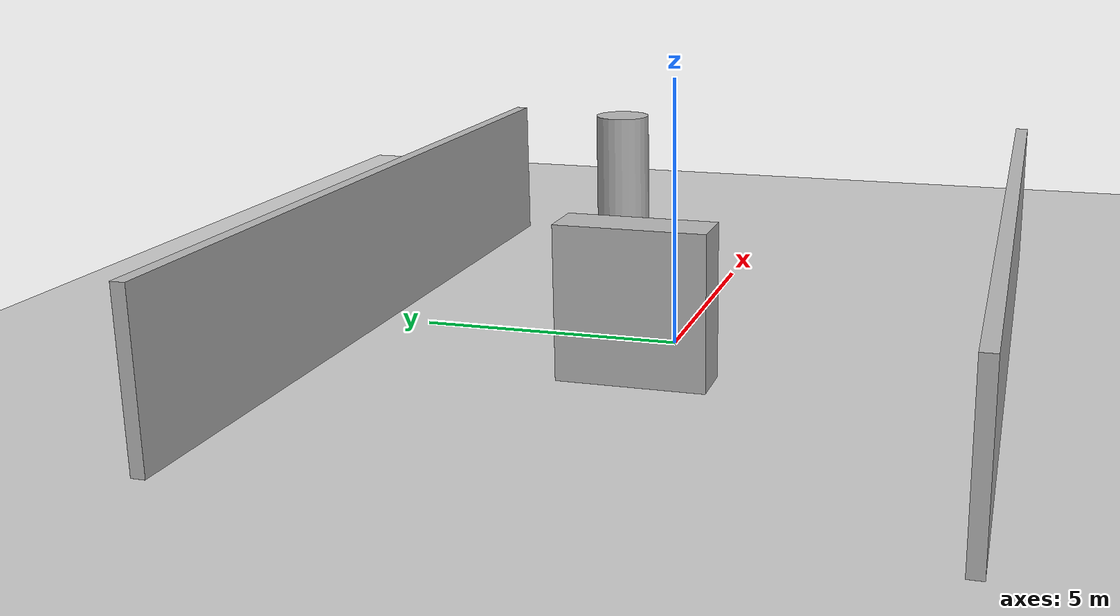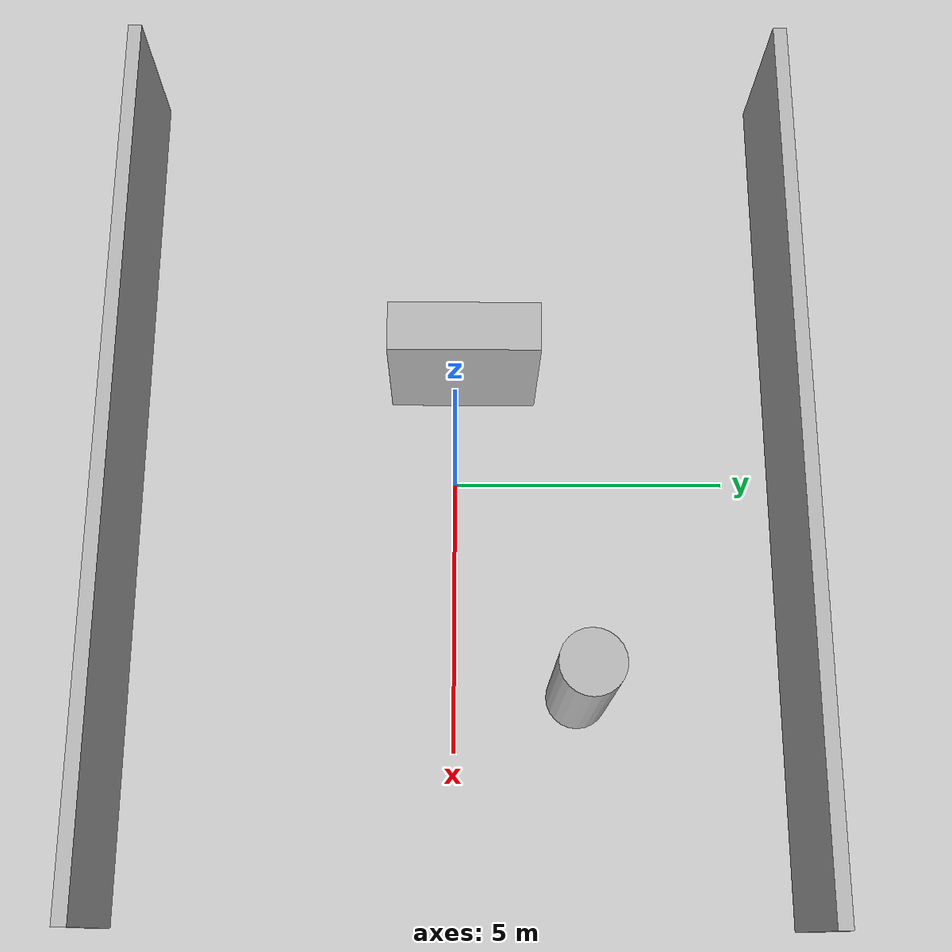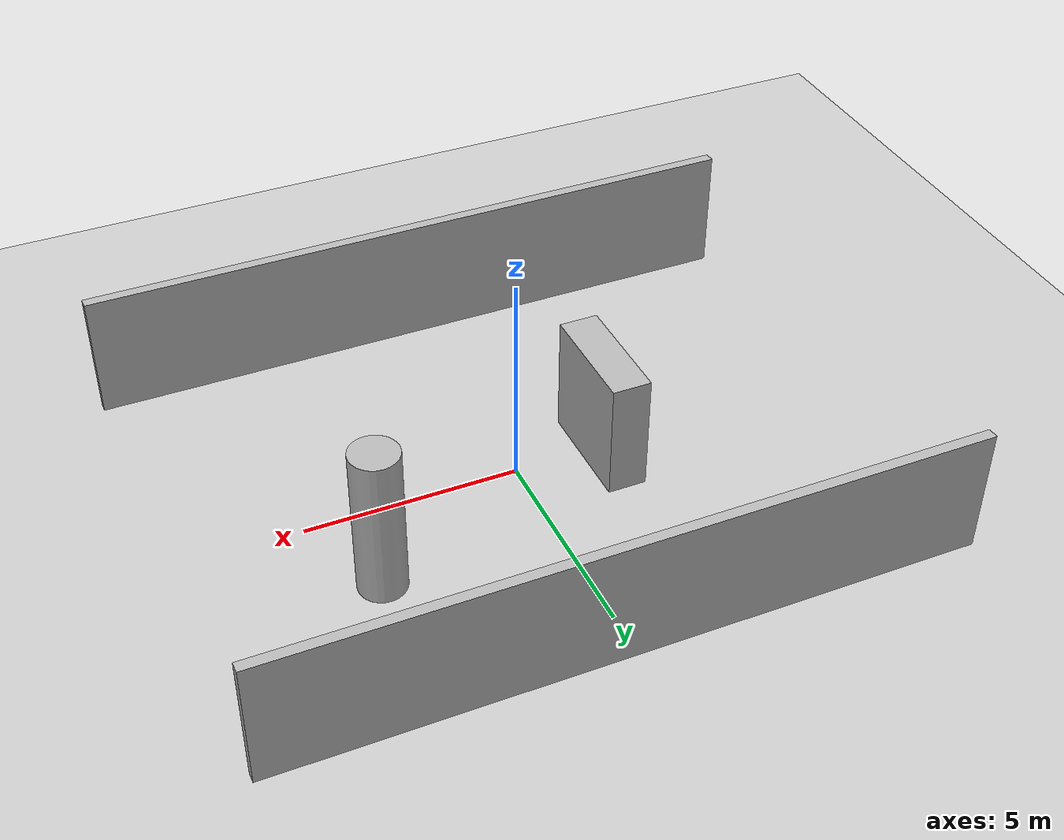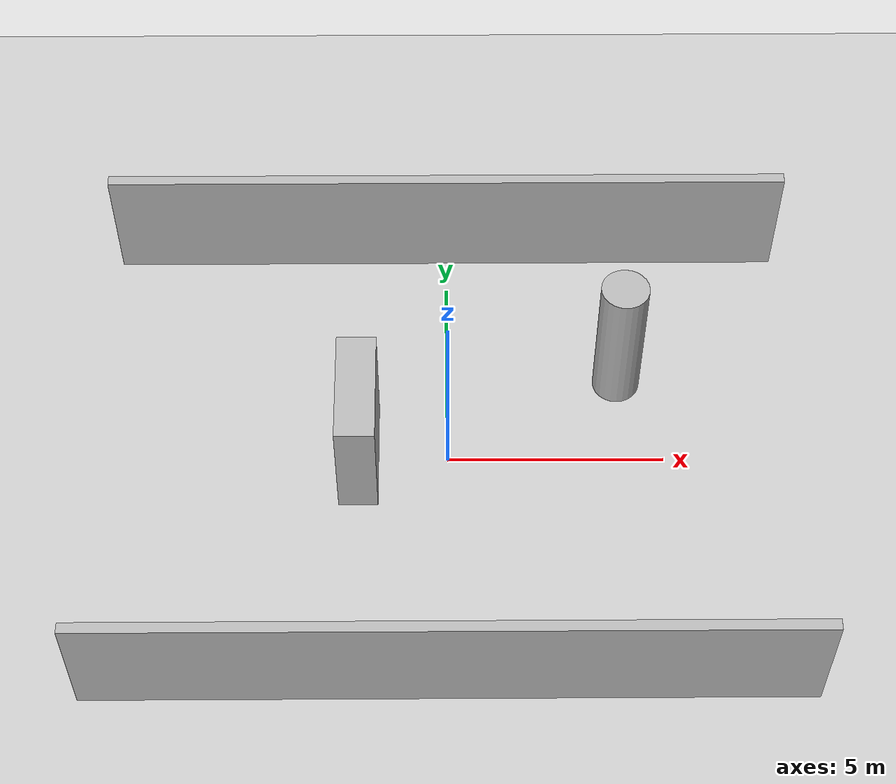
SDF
<?xml version="1.0" ?>
<sdf version="1.6">
  <world name="fuel_office">
    <include>
      <uri>model://sun</uri>
    </include>
    <include>
      <uri>model://ground_plane</uri>
    </include>
    <model name="pillar">
      <pose>4 2.2 1.8 0 0 0</pose>
      <link name="link">
        <collision name="collision"><geometry><cylinder><radius>0.55</radius><length>3.6</length></cylinder></geometry></collision>
        <visual name="visual"><geometry><cylinder><radius>0.55</radius><length>3.6</length></cylinder></geometry></visual>
      </link>
    </model>
    <model name="corridor_wall_left">
      <pose>0 -6 1.5 0 0 0</pose>
      <link name="link">
        <collision name="collision"><geometry><box><size>16 0.25 3</size></box></geometry></collision>
        <visual name="visual"><geometry><box><size>16 0.25 3</size></box></geometry></visual>
      </link>
    </model>
    <model name="corridor_wall_right">
      <pose>0 6 1.5 0 0 0</pose>
      <link name="link">
        <collision name="collision"><geometry><box><size>16 0.25 3</size></box></geometry></collision>
        <visual name="visual"><geometry><box><size>16 0.25 3</size></box></geometry></visual>
      </link>
    </model>
    <model name="office_block">
      <pose>-2.05 0.15 1.4 0 0 0</pose>
      <link name="link">
        <collision name="collision"><geometry><box><size>0.9 2.7 2.8</size></box></geometry></collision>
        <visual name="visual"><geometry><box><size>0.9 2.7 2.8</size></box></geometry></visual>
      </link>
    </model>
  </world>
</sdf>
